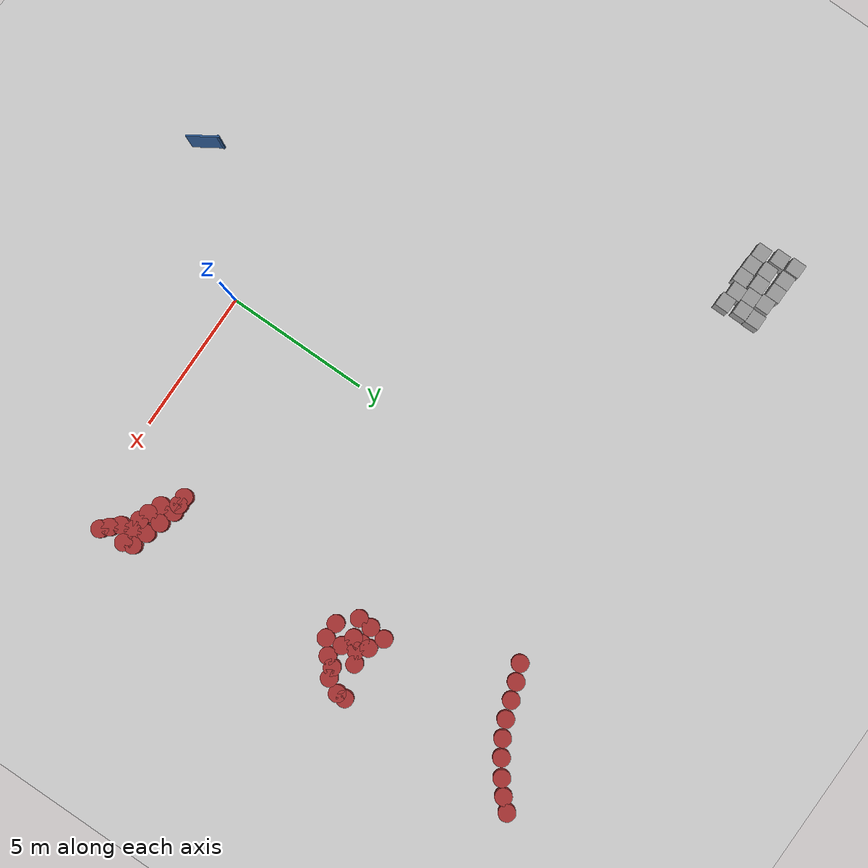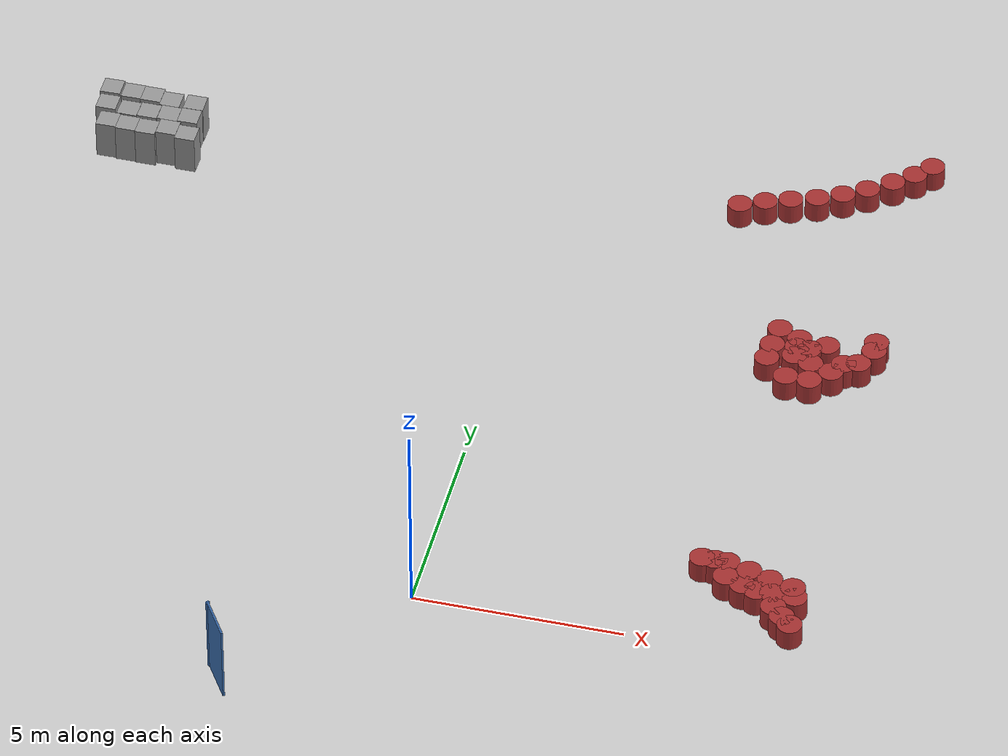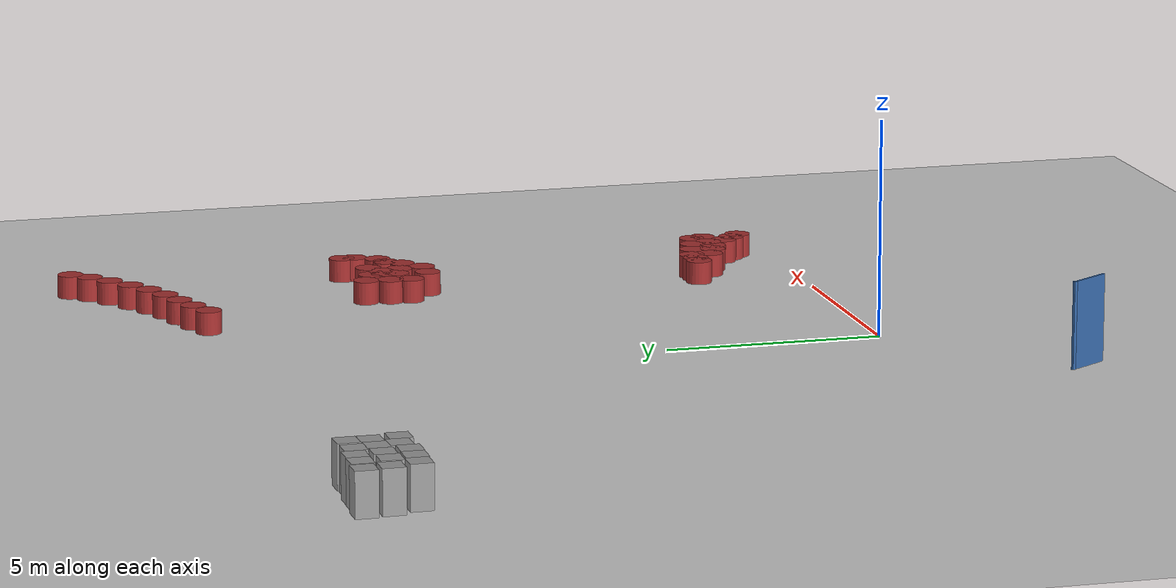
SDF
<sdf version="1.6">
 <world name="default">
  <model name="ground_plane">
   <static>1</static>
   <link name="link">
    <collision name="collision">
     <geometry><plane><normal>0 0 1</normal><size>100 100</size></plane></geometry>
     <surface><friction><ode><mu>100</mu><mu2>50</mu2></ode></friction></surface>
    </collision>
    <visual name="visual">
     <cast_shadows>0</cast_shadows>
     <geometry><plane><normal>0 0 1</normal><size>100 100</size></plane></geometry>
     <material>
      <script><uri>file://media/materials/scripts/gazebo.material</uri><name>Gazebo/Grey</name></script>
     </material>
    </visual>
   </link>
  </model>
  <model name="unit_cylinder_0">
   <static>1</static>
   <pose>8.49487 0.951336 0 0 -0 0</pose>
   <link name="link">
    <inertial>
     <mass>1</mass>
     <inertia><ixx>0.145833</ixx><ixy>0</ixy><ixz>0</ixz><iyy>0.145833</iyy><iyz>0</iyz><izz>0.125</izz></inertia>
    </inertial>
    <collision name="collision">
     <geometry><cylinder><radius>0.3</radius><length>1</length></cylinder></geometry>
    </collision>
    <visual name="visual">
     <geometry><cylinder><radius>0.3</radius><length>1</length></cylinder></geometry>
     <material><ambient>0.648 0.192 0.192 1</ambient><diffuse>0.648 0.192 0.192 1</diffuse></material>
     <material>
      <script><name>Gazebo/Grey</name><uri>file://media/materials/scripts/gazebo.material</uri></script>
     </material>
    </visual>
   </link>
  </model>
  <model name="unit_cylinder_8">
   <static>1</static>
   <pose>7.7404 1.62892 0 0 -0 0</pose>
   <link name="link">
    <inertial>
     <mass>1</mass>
     <inertia><ixx>0.145833</ixx><ixy>0</ixy><ixz>0</ixz><iyy>0.145833</iyy><iyz>0</iyz><izz>0.125</izz></inertia>
    </inertial>
    <collision name="collision">
     <geometry><cylinder><radius>0.3</radius><length>1</length></cylinder></geometry>
    </collision>
    <visual name="visual">
     <geometry><cylinder><radius>0.3</radius><length>1</length></cylinder></geometry>
     <material><ambient>0.648 0.192 0.192 1</ambient><diffuse>0.648 0.192 0.192 1</diffuse></material>
     <material>
      <script><name>Gazebo/Grey</name><uri>file://media/materials/scripts/gazebo.material</uri></script>
     </material>
    </visual>
   </link>
  </model>
  <model name="unit_cylinder_9">
   <static>1</static>
   <pose>8.23796 1.21672 0 0 -0 0</pose>
   <link name="link">
    <inertial>
     <mass>1</mass>
     <inertia><ixx>0.145833</ixx><ixy>0</ixy><ixz>0</ixz><iyy>0.145833</iyy><iyz>0</iyz><izz>0.125</izz></inertia>
    </inertial>
    <collision name="collision">
     <geometry><cylinder><radius>0.3</radius><length>1</length></cylinder></geometry>
    </collision>
    <visual name="visual">
     <geometry><cylinder><radius>0.3</radius><length>1</length></cylinder></geometry>
     <material><ambient>0.648 0.192 0.192 1</ambient><diffuse>0.648 0.192 0.192 1</diffuse></material>
     <material>
      <script><name>Gazebo/Grey</name><uri>file://media/materials/scripts/gazebo.material</uri></script>
     </material>
    </visual>
   </link>
  </model>
  <model name="unit_cylinder_10">
   <static>1</static>
   <pose>5.63003 15.006 0 0 -0 0</pose>
   <link name="link">
    <inertial>
     <mass>1</mass>
     <inertia><ixx>0.145833</ixx><ixy>0</ixy><ixz>0</ixz><iyy>0.145833</iyy><iyz>0</iyz><izz>0.125</izz></inertia>
    </inertial>
    <collision name="collision">
     <geometry><cylinder><radius>0.3</radius><length>1</length></cylinder></geometry>
    </collision>
    <visual name="visual">
     <geometry><cylinder><radius>0.3</radius><length>1</length></cylinder></geometry>
     <material><ambient>0.648 0.192 0.192 1</ambient><diffuse>0.648 0.192 0.192 1</diffuse></material>
     <material>
      <script><name>Gazebo/Grey</name><uri>file://media/materials/scripts/gazebo.material</uri></script>
     </material>
    </visual>
   </link>
  </model>
  <model name="unit_cylinder_31">
   <static>1</static>
   <pose>7.97845 2.06635 0 0 -0 0</pose>
   <link name="link">
    <inertial>
     <mass>1</mass>
     <inertia><ixx>0.145833</ixx><ixy>0</ixy><ixz>0</ixz><iyy>0.145833</iyy><iyz>0</iyz><izz>0.125</izz></inertia>
    </inertial>
    <collision name="collision">
     <geometry><cylinder><radius>0.3</radius><length>1</length></cylinder></geometry>
    </collision>
    <visual name="visual">
     <geometry><cylinder><radius>0.3</radius><length>1</length></cylinder></geometry>
     <material><ambient>0.648 0.192 0.192 1</ambient><diffuse>0.648 0.192 0.192 1</diffuse></material>
     <material>
      <script><name>Gazebo/Grey</name><uri>file://media/materials/scripts/gazebo.material</uri></script>
     </material>
    </visual>
   </link>
  </model>
  <model name="unit_cylinder_36">
   <static>1</static>
   <pose>8.54934 1.9215 0 0 -0 0</pose>
   <link name="link">
    <inertial>
     <mass>1</mass>
     <inertia><ixx>0.145833</ixx><ixy>0</ixy><ixz>0</ixz><iyy>0.145833</iyy><iyz>0</iyz><izz>0.125</izz></inertia>
    </inertial>
    <collision name="collision">
     <geometry><cylinder><radius>0.3</radius><length>1</length></cylinder></geometry>
    </collision>
    <visual name="visual">
     <geometry><cylinder><radius>0.3</radius><length>1</length></cylinder></geometry>
     <material><ambient>0.648 0.192 0.192 1</ambient><diffuse>0.648 0.192 0.192 1</diffuse></material>
     <material>
      <script><name>Gazebo/Grey</name><uri>file://media/materials/scripts/gazebo.material</uri></script>
     </material>
    </visual>
   </link>
  </model>
  <model name="unit_cylinder_50">
   <static>1</static>
   <pose>6.36842 10.4436 0 0 -0 0</pose>
   <link name="link">
    <inertial>
     <mass>1</mass>
     <inertia><ixx>0.145833</ixx><ixy>0</ixy><ixz>0</ixz><iyy>0.145833</iyy><iyz>0</iyz><izz>0.125</izz></inertia>
    </inertial>
    <collision name="collision">
     <geometry><cylinder><radius>0.3</radius><length>1</length></cylinder></geometry>
    </collision>
    <visual name="visual">
     <geometry><cylinder><radius>0.3</radius><length>1</length></cylinder></geometry>
     <material><ambient>0.648 0.192 0.192 1</ambient><diffuse>0.648 0.192 0.192 1</diffuse></material>
     <material>
      <script><name>Gazebo/Grey</name><uri>file://media/materials/scripts/gazebo.material</uri></script>
     </material>
    </visual>
   </link>
  </model>
  <model name="unit_cylinder_51">
   <static>1</static>
   <pose>6.27683 9.38692 0 0 -0 0</pose>
   <link name="link">
    <inertial>
     <mass>1</mass>
     <inertia><ixx>0.145833</ixx><ixy>0</ixy><ixz>0</ixz><iyy>0.145833</iyy><iyz>0</iyz><izz>0.125</izz></inertia>
    </inertial>
    <collision name="collision">
     <geometry><cylinder><radius>0.3</radius><length>1</length></cylinder></geometry>
    </collision>
    <visual name="visual">
     <geometry><cylinder><radius>0.3</radius><length>1</length></cylinder></geometry>
     <material><ambient>0.648 0.192 0.192 1</ambient><diffuse>0.648 0.192 0.192 1</diffuse></material>
     <material>
      <script><name>Gazebo/Grey</name><uri>file://media/materials/scripts/gazebo.material</uri></script>
     </material>
    </visual>
   </link>
  </model>
  <model name="unit_cylinder_54">
   <static>1</static>
   <pose>6.84905 8.85668 0 0 -0 0</pose>
   <link name="link">
    <inertial>
     <mass>1</mass>
     <inertia><ixx>0.145833</ixx><ixy>0</ixy><ixz>0</ixz><iyy>0.145833</iyy><iyz>0</iyz><izz>0.125</izz></inertia>
    </inertial>
    <collision name="collision">
     <geometry><cylinder><radius>0.3</radius><length>1</length></cylinder></geometry>
    </collision>
    <visual name="visual">
     <geometry><cylinder><radius>0.3</radius><length>1</length></cylinder></geometry>
     <material><ambient>0.648 0.192 0.192 1</ambient><diffuse>0.648 0.192 0.192 1</diffuse></material>
     <material>
      <script><name>Gazebo/Grey</name><uri>file://media/materials/scripts/gazebo.material</uri></script>
     </material>
    </visual>
   </link>
  </model>
  <model name="unit_cylinder_55">
   <static>1</static>
   <pose>6.304 9.86983 0 0 -0 0</pose>
   <link name="link">
    <inertial>
     <mass>1</mass>
     <inertia><ixx>0.145833</ixx><ixy>0</ixy><ixz>0</ixz><iyy>0.145833</iyy><iyz>0</iyz><izz>0.125</izz></inertia>
    </inertial>
    <collision name="collision">
     <geometry><cylinder><radius>0.3</radius><length>1</length></cylinder></geometry>
    </collision>
    <visual name="visual">
     <geometry><cylinder><radius>0.3</radius><length>1</length></cylinder></geometry>
     <material><ambient>0.648 0.192 0.192 1</ambient><diffuse>0.648 0.192 0.192 1</diffuse></material>
     <material>
      <script><name>Gazebo/Grey</name><uri>file://media/materials/scripts/gazebo.material</uri></script>
     </material>
    </visual>
   </link>
  </model>
  <model name="unit_cylinder_56">
   <static>1</static>
   <pose>7.41842 8.85559 0 0 -0 0</pose>
   <link name="link">
    <inertial>
     <mass>1</mass>
     <inertia><ixx>0.145833</ixx><ixy>0</ixy><ixz>0</ixz><iyy>0.145833</iyy><iyz>0</iyz><izz>0.125</izz></inertia>
    </inertial>
    <collision name="collision">
     <geometry><cylinder><radius>0.3</radius><length>1</length></cylinder></geometry>
    </collision>
    <visual name="visual">
     <geometry><cylinder><radius>0.3</radius><length>1</length></cylinder></geometry>
     <material><ambient>0.648 0.192 0.192 1</ambient><diffuse>0.648 0.192 0.192 1</diffuse></material>
     <material>
      <script><name>Gazebo/Grey</name><uri>file://media/materials/scripts/gazebo.material</uri></script>
     </material>
    </visual>
   </link>
  </model>
  <model name="unit_cylinder_57">
   <static>1</static>
   <pose>7.32882 9.42661 0 0 -0 0</pose>
   <link name="link">
    <inertial>
     <mass>1</mass>
     <inertia><ixx>0.145833</ixx><ixy>0</ixy><ixz>0</ixz><iyy>0.145833</iyy><iyz>0</iyz><izz>0.125</izz></inertia>
    </inertial>
    <collision name="collision">
     <geometry><cylinder><radius>0.3</radius><length>1</length></cylinder></geometry>
    </collision>
    <visual name="visual">
     <geometry><cylinder><radius>0.3</radius><length>1</length></cylinder></geometry>
     <material><ambient>0.648 0.192 0.192 1</ambient><diffuse>0.648 0.192 0.192 1</diffuse></material>
     <material>
      <script><name>Gazebo/Grey</name><uri>file://media/materials/scripts/gazebo.material</uri></script>
     </material>
    </visual>
   </link>
  </model>
  <model name="unit_cylinder_59">
   <static>1</static>
   <pose>5.04319 14.7989 0 0 -0 0</pose>
   <link name="link">
    <inertial>
     <mass>1</mass>
     <inertia><ixx>0.145833</ixx><ixy>0</ixy><ixz>0</ixz><iyy>0.145833</iyy><iyz>0</iyz><izz>0.125</izz></inertia>
    </inertial>
    <collision name="collision">
     <geometry><cylinder><radius>0.3</radius><length>1</length></cylinder></geometry>
    </collision>
    <visual name="visual">
     <geometry><cylinder><radius>0.3</radius><length>1</length></cylinder></geometry>
     <material><ambient>0.648 0.192 0.192 1</ambient><diffuse>0.648 0.192 0.192 1</diffuse></material>
     <material>
      <script><name>Gazebo/Grey</name><uri>file://media/materials/scripts/gazebo.material</uri></script>
     </material>
    </visual>
   </link>
  </model>
  <model name="unit_cylinder_60">
   <static>1</static>
   <pose>4.47051 14.5568 0 0 -0 0</pose>
   <link name="link">
    <inertial>
     <mass>1</mass>
     <inertia><ixx>0.145833</ixx><ixy>0</ixy><ixz>0</ixz><iyy>0.145833</iyy><iyz>0</iyz><izz>0.125</izz></inertia>
    </inertial>
    <collision name="collision">
     <geometry><cylinder><radius>0.3</radius><length>1</length></cylinder></geometry>
    </collision>
    <visual name="visual">
     <geometry><cylinder><radius>0.3</radius><length>1</length></cylinder></geometry>
     <material><ambient>0.648 0.192 0.192 1</ambient><diffuse>0.648 0.192 0.192 1</diffuse></material>
     <material>
      <script><name>Gazebo/Grey</name><uri>file://media/materials/scripts/gazebo.material</uri></script>
     </material>
    </visual>
   </link>
  </model>
  <model name="unit_cylinder_61">
   <static>1</static>
   <pose>6.3 2.4 0 0 -0 0</pose>
   <link name="link">
    <inertial>
     <mass>1</mass>
     <inertia><ixx>0.145833</ixx><ixy>0</ixy><ixz>0</ixz><iyy>0.145833</iyy><iyz>0</iyz><izz>0.125</izz></inertia>
    </inertial>
    <collision name="collision">
     <geometry><cylinder><radius>0.3</radius><length>1</length></cylinder></geometry>
    </collision>
    <visual name="visual">
     <geometry><cylinder><radius>0.3</radius><length>1</length></cylinder></geometry>
     <material><ambient>0.648 0.192 0.192 1</ambient><diffuse>0.648 0.192 0.192 1</diffuse></material>
     <material>
      <script><name>Gazebo/Grey</name><uri>file://media/materials/scripts/gazebo.material</uri></script>
     </material>
    </visual>
   </link>
  </model>
  <model name="unit_cylinder_62">
   <static>1</static>
   <pose>6.81366 15.4863 0 0 -0 0</pose>
   <link name="link">
    <inertial>
     <mass>1</mass>
     <inertia><ixx>0.145833</ixx><ixy>0</ixy><ixz>0</ixz><iyy>0.145833</iyy><iyz>0</iyz><izz>0.125</izz></inertia>
    </inertial>
    <collision name="collision">
     <geometry><cylinder><radius>0.3</radius><length>1</length></cylinder></geometry>
    </collision>
    <visual name="visual">
     <geometry><cylinder><radius>0.3</radius><length>1</length></cylinder></geometry>
     <material><ambient>0.648 0.192 0.192 1</ambient><diffuse>0.648 0.192 0.192 1</diffuse></material>
     <material>
      <script><name>Gazebo/Grey</name><uri>file://media/materials/scripts/gazebo.material</uri></script>
     </material>
    </visual>
   </link>
  </model>
  <model name="unit_cylinder_63">
   <static>1</static>
   <pose>6.24098 15.2147 0 0 -0 0</pose>
   <link name="link">
    <inertial>
     <mass>1</mass>
     <inertia><ixx>0.145833</ixx><ixy>0</ixy><ixz>0</ixz><iyy>0.145833</iyy><iyz>0</iyz><izz>0.125</izz></inertia>
    </inertial>
    <collision name="collision">
     <geometry><cylinder><radius>0.3</radius><length>1</length></cylinder></geometry>
    </collision>
    <visual name="visual">
     <geometry><cylinder><radius>0.3</radius><length>1</length></cylinder></geometry>
     <material><ambient>0.648 0.192 0.192 1</ambient><diffuse>0.648 0.192 0.192 1</diffuse></material>
     <material>
      <script><name>Gazebo/Grey</name><uri>file://media/materials/scripts/gazebo.material</uri></script>
     </material>
    </visual>
   </link>
  </model>
  <model name="unit_cylinder_64">
   <static>1</static>
   <pose>7.44911 2.23405 0 0 -0 0</pose>
   <link name="link">
    <inertial>
     <mass>1</mass>
     <inertia><ixx>0.145833</ixx><ixy>0</ixy><ixz>0</ixz><iyy>0.145833</iyy><iyz>0</iyz><izz>0.125</izz></inertia>
    </inertial>
    <collision name="collision">
     <geometry><cylinder><radius>0.3</radius><length>1</length></cylinder></geometry>
    </collision>
    <visual name="visual">
     <geometry><cylinder><radius>0.3</radius><length>1</length></cylinder></geometry>
     <material><ambient>0.648 0.192 0.192 1</ambient><diffuse>0.648 0.192 0.192 1</diffuse></material>
     <material>
      <script><name>Gazebo/Grey</name><uri>file://media/materials/scripts/gazebo.material</uri></script>
     </material>
    </visual>
   </link>
  </model>
  <model name="unit_cylinder_65">
   <static>1</static>
   <pose>6.6 2.4 0 0 -0 0</pose>
   <link name="link">
    <inertial>
     <mass>1</mass>
     <inertia><ixx>0.145833</ixx><ixy>0</ixy><ixz>0</ixz><iyy>0.145833</iyy><iyz>0</iyz><izz>0.125</izz></inertia>
    </inertial>
    <collision name="collision">
     <geometry><cylinder><radius>0.3</radius><length>1</length></cylinder></geometry>
    </collision>
    <visual name="visual">
     <geometry><cylinder><radius>0.3</radius><length>1</length></cylinder></geometry>
     <material><ambient>0.648 0.192 0.192 1</ambient><diffuse>0.648 0.192 0.192 1</diffuse></material>
     <material>
      <script><name>Gazebo/Grey</name><uri>file://media/materials/scripts/gazebo.material</uri></script>
     </material>
    </visual>
   </link>
  </model>
  <model name="unit_cylinder_66">
   <static>1</static>
   <pose>7.3541 15.8169 0 0 -0 0</pose>
   <link name="link">
    <inertial>
     <mass>1</mass>
     <inertia><ixx>0.145833</ixx><ixy>0</ixy><ixz>0</ixz><iyy>0.145833</iyy><iyz>0</iyz><izz>0.125</izz></inertia>
    </inertial>
    <collision name="collision">
     <geometry><cylinder><radius>0.3</radius><length>1</length></cylinder></geometry>
    </collision>
    <visual name="visual">
     <geometry><cylinder><radius>0.3</radius><length>1</length></cylinder></geometry>
     <material><ambient>0.648 0.192 0.192 1</ambient><diffuse>0.648 0.192 0.192 1</diffuse></material>
     <material>
      <script><name>Gazebo/Grey</name><uri>file://media/materials/scripts/gazebo.material</uri></script>
     </material>
    </visual>
   </link>
  </model>
  <model name="unit_cylinder_67">
   <static>1</static>
   <pose>7.89653 16.2066 0 0 -0 0</pose>
   <link name="link">
    <inertial>
     <mass>1</mass>
     <inertia><ixx>0.145833</ixx><ixy>0</ixy><ixz>0</ixz><iyy>0.145833</iyy><iyz>0</iyz><izz>0.125</izz></inertia>
    </inertial>
    <collision name="collision">
     <geometry><cylinder><radius>0.3</radius><length>1</length></cylinder></geometry>
    </collision>
    <visual name="visual">
     <geometry><cylinder><radius>0.3</radius><length>1</length></cylinder></geometry>
     <material><ambient>0.648 0.192 0.192 1</ambient><diffuse>0.648 0.192 0.192 1</diffuse></material>
     <material>
      <script><name>Gazebo/Grey</name><uri>file://media/materials/scripts/gazebo.material</uri></script>
     </material>
    </visual>
   </link>
  </model>
  <model name="unit_cylinder_68">
   <static>1</static>
   <pose>6.9 2.4 0 0 -0 0</pose>
   <link name="link">
    <inertial>
     <mass>1</mass>
     <inertia><ixx>0.145833</ixx><ixy>0</ixy><ixz>0</ixz><iyy>0.145833</iyy><iyz>0</iyz><izz>0.125</izz></inertia>
    </inertial>
    <collision name="collision">
     <geometry><cylinder><radius>0.3</radius><length>1</length></cylinder></geometry>
    </collision>
    <visual name="visual">
     <geometry><cylinder><radius>0.3</radius><length>1</length></cylinder></geometry>
     <material><ambient>0.648 0.192 0.192 1</ambient><diffuse>0.648 0.192 0.192 1</diffuse></material>
     <material>
      <script><name>Gazebo/Grey</name><uri>file://media/materials/scripts/gazebo.material</uri></script>
     </material>
    </visual>
   </link>
  </model>
  <model name="unit_cylinder_69">
   <static>1</static>
   <pose>6.9 9.6 0 0 -0 0</pose>
   <link name="link">
    <inertial>
     <mass>1</mass>
     <inertia><ixx>0.145833</ixx><ixy>0</ixy><ixz>0</ixz><iyy>0.145833</iyy><iyz>0</iyz><izz>0.125</izz></inertia>
    </inertial>
    <collision name="collision">
     <geometry><cylinder><radius>0.3</radius><length>1</length></cylinder></geometry>
    </collision>
    <visual name="visual">
     <geometry><cylinder><radius>0.3</radius><length>1</length></cylinder></geometry>
     <material><ambient>0.648 0.192 0.192 1</ambient><diffuse>0.648 0.192 0.192 1</diffuse></material>
     <material>
      <script><name>Gazebo/Grey</name><uri>file://media/materials/scripts/gazebo.material</uri></script>
     </material>
    </visual>
   </link>
  </model>
  <model name="unit_cylinder_70">
   <static>1</static>
   <pose>6.9 9.9 0 0 -0 0</pose>
   <link name="link">
    <inertial>
     <mass>1</mass>
     <inertia><ixx>0.145833</ixx><ixy>0</ixy><ixz>0</ixz><iyy>0.145833</iyy><iyz>0</iyz><izz>0.125</izz></inertia>
    </inertial>
    <collision name="collision">
     <geometry><cylinder><radius>0.3</radius><length>1</length></cylinder></geometry>
    </collision>
    <visual name="visual">
     <geometry><cylinder><radius>0.3</radius><length>1</length></cylinder></geometry>
     <material><ambient>0.648 0.192 0.192 1</ambient><diffuse>0.648 0.192 0.192 1</diffuse></material>
     <material>
      <script><name>Gazebo/Grey</name><uri>file://media/materials/scripts/gazebo.material</uri></script>
     </material>
    </visual>
   </link>
  </model>
  <model name="unit_cylinder_71">
   <static>1</static>
   <pose>6.9 10.2 0 0 -0 0</pose>
   <link name="link">
    <inertial>
     <mass>1</mass>
     <inertia><ixx>0.145833</ixx><ixy>0</ixy><ixz>0</ixz><iyy>0.145833</iyy><iyz>0</iyz><izz>0.125</izz></inertia>
    </inertial>
    <collision name="collision">
     <geometry><cylinder><radius>0.3</radius><length>1</length></cylinder></geometry>
    </collision>
    <visual name="visual">
     <geometry><cylinder><radius>0.3</radius><length>1</length></cylinder></geometry>
     <material><ambient>0.648 0.192 0.192 1</ambient><diffuse>0.648 0.192 0.192 1</diffuse></material>
     <material>
      <script><name>Gazebo/Grey</name><uri>file://media/materials/scripts/gazebo.material</uri></script>
     </material>
    </visual>
   </link>
  </model>
  <model name="unit_cylinder_72">
   <static>1</static>
   <pose>7.2 9.9 0 0 -0 0</pose>
   <link name="link">
    <inertial>
     <mass>1</mass>
     <inertia><ixx>0.145833</ixx><ixy>0</ixy><ixz>0</ixz><iyy>0.145833</iyy><iyz>0</iyz><izz>0.125</izz></inertia>
    </inertial>
    <collision name="collision">
     <geometry><cylinder><radius>0.3</radius><length>1</length></cylinder></geometry>
    </collision>
    <visual name="visual">
     <geometry><cylinder><radius>0.3</radius><length>1</length></cylinder></geometry>
     <material><ambient>0.648 0.192 0.192 1</ambient><diffuse>0.648 0.192 0.192 1</diffuse></material>
     <material>
      <script><name>Gazebo/Grey</name><uri>file://media/materials/scripts/gazebo.material</uri></script>
     </material>
    </visual>
   </link>
  </model>
  <model name="unit_cylinder_80">
   <static>1</static>
   <pose>7.8596 9.24358 0 0 -0 0</pose>
   <link name="link">
    <inertial>
     <mass>1</mass>
     <inertia><ixx>0.145833</ixx><ixy>0</ixy><ixz>0</ixz><iyy>0.145833</iyy><iyz>0</iyz><izz>0.125</izz></inertia>
    </inertial>
    <collision name="collision">
     <geometry><cylinder><radius>0.3</radius><length>1</length></cylinder></geometry>
    </collision>
    <visual name="visual">
     <geometry><cylinder><radius>0.3</radius><length>1</length></cylinder></geometry>
     <material><ambient>0.648 0.192 0.192 1</ambient><diffuse>0.648 0.192 0.192 1</diffuse></material>
     <material>
      <script><name>Gazebo/Grey</name><uri>file://media/materials/scripts/gazebo.material</uri></script>
     </material>
    </visual>
   </link>
  </model>
  <model name="unit_cylinder_82">
   <static>1</static>
   <pose>8.43246 9.69504 0 0 -0 0</pose>
   <link name="link">
    <inertial>
     <mass>1</mass>
     <inertia><ixx>0.145833</ixx><ixy>0</ixy><ixz>0</ixz><iyy>0.145833</iyy><iyz>0</iyz><izz>0.125</izz></inertia>
    </inertial>
    <collision name="collision">
     <geometry><cylinder><radius>0.3</radius><length>1</length></cylinder></geometry>
    </collision>
    <visual name="visual">
     <geometry><cylinder><radius>0.3</radius><length>1</length></cylinder></geometry>
     <material><ambient>0.648 0.192 0.192 1</ambient><diffuse>0.648 0.192 0.192 1</diffuse></material>
     <material>
      <script><name>Gazebo/Grey</name><uri>file://media/materials/scripts/gazebo.material</uri></script>
     </material>
    </visual>
   </link>
  </model>
  <model name="unit_cylinder_83">
   <static>1</static>
   <pose>8.09771 9.57615 0 0 -0 0</pose>
   <link name="link">
    <inertial>
     <mass>1</mass>
     <inertia><ixx>0.145833</ixx><ixy>0</ixy><ixz>0</ixz><iyy>0.145833</iyy><iyz>0</iyz><izz>0.125</izz></inertia>
    </inertial>
    <collision name="collision">
     <geometry><cylinder><radius>0.3</radius><length>1</length></cylinder></geometry>
    </collision>
    <visual name="visual">
     <geometry><cylinder><radius>0.3</radius><length>1</length></cylinder></geometry>
     <material><ambient>0.648 0.192 0.192 1</ambient><diffuse>0.648 0.192 0.192 1</diffuse></material>
     <material>
      <script><name>Gazebo/Grey</name><uri>file://media/materials/scripts/gazebo.material</uri></script>
     </material>
    </visual>
   </link>
  </model>
  <model name="unit_cylinder_88">
   <static>1</static>
   <pose>7.58689 10.1187 0 0 -0 0</pose>
   <link name="link">
    <inertial>
     <mass>1</mass>
     <inertia><ixx>0.145833</ixx><ixy>0</ixy><ixz>0</ixz><iyy>0.145833</iyy><iyz>0</iyz><izz>0.125</izz></inertia>
    </inertial>
    <collision name="collision">
     <geometry><cylinder><radius>0.3</radius><length>1</length></cylinder></geometry>
    </collision>
    <visual name="visual">
     <geometry><cylinder><radius>0.3</radius><length>1</length></cylinder></geometry>
     <material><ambient>0.648 0.192 0.192 1</ambient><diffuse>0.648 0.192 0.192 1</diffuse></material>
     <material>
      <script><name>Gazebo/Grey</name><uri>file://media/materials/scripts/gazebo.material</uri></script>
     </material>
    </visual>
   </link>
  </model>
  <model name="unit_cylinder_89">
   <static>1</static>
   <pose>8.7 10.2 0 0 -0 0</pose>
   <link name="link">
    <inertial>
     <mass>1</mass>
     <inertia><ixx>0.145833</ixx><ixy>0</ixy><ixz>0</ixz><iyy>0.145833</iyy><iyz>0</iyz><izz>0.125</izz></inertia>
    </inertial>
    <collision name="collision">
     <geometry><cylinder><radius>0.3</radius><length>1</length></cylinder></geometry>
    </collision>
    <visual name="visual">
     <geometry><cylinder><radius>0.3</radius><length>1</length></cylinder></geometry>
     <material><ambient>0.648 0.192 0.192 1</ambient><diffuse>0.648 0.192 0.192 1</diffuse></material>
     <material>
      <script><name>Gazebo/Grey</name><uri>file://media/materials/scripts/gazebo.material</uri></script>
     </material>
    </visual>
   </link>
  </model>
  <model name="unit_cylinder_90">
   <static>1</static>
   <pose>8.7 10.5 0 0 -0 0</pose>
   <link name="link">
    <inertial>
     <mass>1</mass>
     <inertia><ixx>0.145833</ixx><ixy>0</ixy><ixz>0</ixz><iyy>0.145833</iyy><iyz>0</iyz><izz>0.125</izz></inertia>
    </inertial>
    <collision name="collision">
     <geometry><cylinder><radius>0.3</radius><length>1</length></cylinder></geometry>
    </collision>
    <visual name="visual">
     <geometry><cylinder><radius>0.3</radius><length>1</length></cylinder></geometry>
     <material><ambient>0.648 0.192 0.192 1</ambient><diffuse>0.648 0.192 0.192 1</diffuse></material>
     <material>
      <script><name>Gazebo/Grey</name><uri>file://media/materials/scripts/gazebo.material</uri></script>
     </material>
    </visual>
   </link>
  </model>
  <model name="unit_cylinder_116">
   <static>1</static>
   <pose>8.72273 16.9848 0 0 -0 0</pose>
   <link name="link">
    <inertial>
     <mass>1</mass>
     <inertia><ixx>0.145833</ixx><ixy>0</ixy><ixz>0</ixz><iyy>0.145833</iyy><iyz>0</iyz><izz>0.125</izz></inertia>
    </inertial>
    <collision name="collision">
     <geometry><cylinder><radius>0.3</radius><length>1</length></cylinder></geometry>
    </collision>
    <visual name="visual">
     <geometry><cylinder><radius>0.3</radius><length>1</length></cylinder></geometry>
     <material><ambient>0.648 0.192 0.192 1</ambient><diffuse>0.648 0.192 0.192 1</diffuse></material>
     <material>
      <script><name>Gazebo/Grey</name><uri>file://media/materials/scripts/gazebo.material</uri></script>
     </material>
    </visual>
   </link>
  </model>
  <model name="unit_cylinder_117">
   <static>1</static>
   <pose>8.35858 16.594 0 0 -0 0</pose>
   <link name="link">
    <inertial>
     <mass>1</mass>
     <inertia><ixx>0.145833</ixx><ixy>0</ixy><ixz>0</ixz><iyy>0.145833</iyy><iyz>0</iyz><izz>0.125</izz></inertia>
    </inertial>
    <collision name="collision">
     <geometry><cylinder><radius>0.3</radius><length>1</length></cylinder></geometry>
    </collision>
    <visual name="visual">
     <geometry><cylinder><radius>0.3</radius><length>1</length></cylinder></geometry>
     <material><ambient>0.648 0.192 0.192 1</ambient><diffuse>0.648 0.192 0.192 1</diffuse></material>
     <material>
      <script><name>Gazebo/Grey</name><uri>file://media/materials/scripts/gazebo.material</uri></script>
     </material>
    </visual>
   </link>
  </model>
  <model name="unit_cylinder_345">
   <static>1</static>
   <pose>7.39574 1.74191 0 0 -0 0</pose>
   <link name="link">
    <inertial>
     <mass>1</mass>
     <inertia><ixx>0.145833</ixx><ixy>0</ixy><ixz>0</ixz><iyy>0.145833</iyy><iyz>0</iyz><izz>0.125</izz></inertia>
    </inertial>
    <collision name="collision">
     <geometry><cylinder><radius>0.3</radius><length>1</length></cylinder></geometry>
    </collision>
    <visual name="visual">
     <geometry><cylinder><radius>0.3</radius><length>1</length></cylinder></geometry>
     <material><ambient>0.648 0.192 0.192 1</ambient><diffuse>0.648 0.192 0.192 1</diffuse></material>
     <material>
      <script><name>Gazebo/Grey</name><uri>file://media/materials/scripts/gazebo.material</uri></script>
     </material>
    </visual>
   </link>
  </model>
  <model name="unit_cylinder_346">
   <static>1</static>
   <pose>8.65275 1.62159 0 0 -0 0</pose>
   <link name="link">
    <inertial>
     <mass>1</mass>
     <inertia><ixx>0.145833</ixx><ixy>0</ixy><ixz>0</ixz><iyy>0.145833</iyy><iyz>0</iyz><izz>0.125</izz></inertia>
    </inertial>
    <collision name="collision">
     <geometry><cylinder><radius>0.3</radius><length>1</length></cylinder></geometry>
    </collision>
    <visual name="visual">
     <geometry><cylinder><radius>0.3</radius><length>1</length></cylinder></geometry>
     <material><ambient>0.648 0.192 0.192 1</ambient><diffuse>0.648 0.192 0.192 1</diffuse></material>
     <material>
      <script><name>Gazebo/Grey</name><uri>file://media/materials/scripts/gazebo.material</uri></script>
     </material>
    </visual>
   </link>
  </model>
  <model name="unit_cylinder_352">
   <static>1</static>
   <pose>6.95838 1.92803 0 0 -0 0</pose>
   <link name="link">
    <inertial>
     <mass>1</mass>
     <inertia><ixx>0.145833</ixx><ixy>0</ixy><ixz>0</ixz><iyy>0.145833</iyy><iyz>0</iyz><izz>0.125</izz></inertia>
    </inertial>
    <collision name="collision">
     <geometry><cylinder><radius>0.3</radius><length>1</length></cylinder></geometry>
    </collision>
    <visual name="visual">
     <geometry><cylinder><radius>0.3</radius><length>1</length></cylinder></geometry>
     <material><ambient>0.648 0.192 0.192 1</ambient><diffuse>0.648 0.192 0.192 1</diffuse></material>
     <material>
      <script><name>Gazebo/Grey</name><uri>file://media/materials/scripts/gazebo.material</uri></script>
     </material>
    </visual>
   </link>
  </model>
  <model name="unit_cylinder_353">
   <static>1</static>
   <pose>8.72731 0.727768 0 0 -0 0</pose>
   <link name="link">
    <inertial>
     <mass>1</mass>
     <inertia><ixx>0.145833</ixx><ixy>0</ixy><ixz>0</ixz><iyy>0.145833</iyy><iyz>0</iyz><izz>0.125</izz></inertia>
    </inertial>
    <collision name="collision">
     <geometry><cylinder><radius>0.3</radius><length>1</length></cylinder></geometry>
    </collision>
    <visual name="visual">
     <geometry><cylinder><radius>0.3</radius><length>1</length></cylinder></geometry>
     <material><ambient>0.648 0.192 0.192 1</ambient><diffuse>0.648 0.192 0.192 1</diffuse></material>
     <material>
      <script><name>Gazebo/Grey</name><uri>file://media/materials/scripts/gazebo.material</uri></script>
     </material>
    </visual>
   </link>
  </model>
  <model name="unit_cylinder_358">
   <static>1</static>
   <pose>8.12041 1.63309 0 0 -0 0</pose>
   <link name="link">
    <inertial>
     <mass>1</mass>
     <inertia><ixx>0.145833</ixx><ixy>0</ixy><ixz>0</ixz><iyy>0.145833</iyy><iyz>0</iyz><izz>0.125</izz></inertia>
    </inertial>
    <collision name="collision">
     <geometry><cylinder><radius>0.3</radius><length>1</length></cylinder></geometry>
    </collision>
    <visual name="visual">
     <geometry><cylinder><radius>0.3</radius><length>1</length></cylinder></geometry>
     <material><ambient>0.648 0.192 0.192 1</ambient><diffuse>0.648 0.192 0.192 1</diffuse></material>
     <material>
      <script><name>Gazebo/Grey</name><uri>file://media/materials/scripts/gazebo.material</uri></script>
     </material>
    </visual>
   </link>
  </model>
  <model name="hinge_door">
   <link name="link_0">
    <inertial>
     <mass>0.11</mass>
     <inertia>
      <ixx>0.0366896</ixx>
      <ixy>0</ixy>
      <ixz>0</ixz>
      <iyy>0.0477583</iyy>
      <iyz>0</iyz>
      <izz>0.0111146</izz>
     </inertia>
    </inertial>
    <pose>0.25 0 1 0 -0 0</pose>
    <visual name="visual">
     <geometry><box><size>1.1 0.05 2</size></box></geometry>
     <material>
      <lighting>1</lighting>
      <script><uri>file://media/materials/scripts/gazebo.material</uri><name>Gazebo/Grey</name></script>
      <shader type="pixel"><normal_map>__default__</normal_map></shader>
      <ambient>0.204 0.396 0.643 1</ambient>
      <diffuse>0.7 0.7 0.7 1</diffuse>
      <specular>0.01 0.01 0.01 1</specular>
      <emissive>0 0 0 1</emissive>
     </material>
    </visual>
    <collision name="collision">
     <geometry><box><size>1.1 0.05 2</size></box></geometry>
     <surface>
      <friction>
       <ode><mu>1</mu><mu2>1</mu2><fdir1>0 0 0</fdir1><slip1>0</slip1><slip2>0</slip2></ode>
       <torsional>
        <coefficient>1</coefficient>
        <patch_radius>0</patch_radius>
        <surface_radius>0</surface_radius>
        <use_patch_radius>1</use_patch_radius>
        <ode><slip>0</slip></ode>
       </torsional>
      </friction>
      <bounce><restitution_coefficient>0</restitution_coefficient><threshold>1e+06</threshold></bounce>
      <contact>
       <collide_without_contact>0</collide_without_contact>
       <collide_without_contact_bitmask>1</collide_without_contact_bitmask>
       <collide_bitmask>1</collide_bitmask>
       <ode>
        <soft_cfm>0</soft_cfm>
        <soft_erp>0.2</soft_erp>
        <kp>1e+13</kp>
        <kd>1</kd>
        <max_vel>0.01</max_vel>
        <min_depth>0</min_depth>
       </ode>
       <bullet>
        <split_impulse>1</split_impulse>
        <split_impulse_penetration_threshold>-0.01</split_impulse_penetration_threshold>
        <soft_cfm>0</soft_cfm>
        <soft_erp>0.2</soft_erp>
        <kp>1e+13</kp>
        <kd>1</kd>
       </bullet>
      </contact>
     </surface>
    </collision>
   </link>
   <link name="link_1">
    <inertial>
     <mass>10.9956</mass>
     <inertia>
      <ixx>3.67206</ixx>
      <ixy>0</ixy>
      <ixz>0</ixz>
      <iyy>3.67206</iyy>
      <iyz>0</iyz>
      <izz>0.0137445</izz>
     </inertia>
    </inertial>
    <pose>-0.25 0 1 0 -0 0</pose>
    <visual name="visual">
     <geometry><cylinder><radius>0.05</radius><length>2</length></cylinder></geometry>
     <material>
      <lighting>1</lighting>
      <script><uri>file://media/materials/scripts/gazebo.material</uri><name>Gazebo/Grey</name></script>
      <shader type="pixel"><normal_map>__default__</normal_map></shader>
      <ambient>0.204 0.396 0.643 1</ambient>
      <diffuse>0.7 0.7 0.7 1</diffuse>
      <specular>0.01 0.01 0.01 1</specular>
      <emissive>0 0 0 1</emissive>
     </material>
    </visual>
    <collision name="collision">
     <geometry><cylinder><radius>0.05</radius><length>2</length></cylinder></geometry>
     <surface>
      <friction>
       <ode><mu>1</mu><mu2>1</mu2><fdir1>0 0 0</fdir1><slip1>0</slip1><slip2>0</slip2></ode>
       <torsional>
        <coefficient>1</coefficient>
        <patch_radius>0</patch_radius>
        <surface_radius>0</surface_radius>
        <use_patch_radius>1</use_patch_radius>
        <ode><slip>0</slip></ode>
       </torsional>
      </friction>
      <bounce><restitution_coefficient>0</restitution_coefficient><threshold>1e+06</threshold></bounce>
      <contact>
       <collide_without_contact>0</collide_without_contact>
       <collide_without_contact_bitmask>1</collide_without_contact_bitmask>
       <collide_bitmask>1</collide_bitmask>
       <ode>
        <soft_cfm>0</soft_cfm>
        <soft_erp>0.2</soft_erp>
        <kp>1e+13</kp>
        <kd>1</kd>
        <max_vel>0.01</max_vel>
        <min_depth>0</min_depth>
       </ode>
       <bullet>
        <split_impulse>1</split_impulse>
        <split_impulse_penetration_threshold>-0.01</split_impulse_penetration_threshold>
        <soft_cfm>0</soft_cfm>
        <soft_erp>0.2</soft_erp>
        <kp>1e+13</kp>
        <kd>1</kd>
       </bullet>
      </contact>
     </surface>
    </collision>
   </link>
   <joint name="hinge" type="revolute">
    <parent>link_1</parent>
    <child>link_0</child>
    <pose>-0.5 0 0 0 -0 0</pose>
    <axis>
     <xyz>0 0 1</xyz>
     <use_parent_model_frame>0</use_parent_model_frame>
     <limit>
      <lower>-1.79769e+308</lower>
      <upper>1.79769e+308</upper>
      <effort>-1</effort>
      <velocity>-1</velocity>
     </limit>
     <dynamics>
      <spring_reference>0</spring_reference>
      <spring_stiffness>0</spring_stiffness>
      <damping>0</damping>
      <friction>0</friction>
     </dynamics>
    </axis>
    <physics>
     <ode><limit><cfm>0</cfm><erp>0.2</erp></limit><suspension><cfm>0</cfm><erp>0.2</erp></suspension></ode>
    </physics>
   </joint>
   <joint name="floor_link" type="fixed">
    <child>link_1</child>
    <parent>world</parent>
    <axis>
     <xyz>0 0 1</xyz>
     <dynamics><spring_reference>0</spring_reference><spring_stiffness>0</spring_stiffness></dynamics>
     <use_parent_model_frame>0</use_parent_model_frame>
     <limit><lower>-1e+16</lower><upper>1e+16</upper></limit>
    </axis>
   </joint>
   <pose>-3.80058 -3.42718 0 0 0 -0.999995</pose>
  </model>
  <model name="unit_box_clone">
   <pose>-10.7293 14.5112 0.5 0 -0 0.000942</pose>
   <link name="link">
    <inertial>
     <mass>1</mass>
     <inertia>
      <ixx>0.166667</ixx>
      <ixy>0</ixy>
      <ixz>0</ixz>
      <iyy>0.166667</iyy>
      <iyz>0</iyz>
      <izz>0.166667</izz>
     </inertia>
    </inertial>
    <collision name="collision"><geometry><box><size>0.5 0.5 1</size></box></geometry></collision>
    <visual name="visual">
     <geometry><box><size>0.5 0.5 1</size></box></geometry>
     <material>
      <script><name>Gazebo/Grey</name><uri>file://media/materials/scripts/gazebo.material</uri></script>
     </material>
    </visual>
   </link>
  </model>
  <model name="unit_box_clone_0">
   <pose>-11.2666 14.562 0.5 0 0 -0.000148</pose>
   <link name="link">
    <inertial>
     <mass>1</mass>
     <inertia>
      <ixx>0.166667</ixx>
      <ixy>0</ixy>
      <ixz>0</ixz>
      <iyy>0.166667</iyy>
      <iyz>0</iyz>
      <izz>0.166667</izz>
     </inertia>
    </inertial>
    <collision name="collision"><geometry><box><size>0.5 0.5 1</size></box></geometry></collision>
    <visual name="visual">
     <geometry><box><size>0.5 0.5 1</size></box></geometry>
     <material>
      <script><name>Gazebo/Grey</name><uri>file://media/materials/scripts/gazebo.material</uri></script>
     </material>
    </visual>
   </link>
  </model>
  <model name="unit_box_clone_1">
   <pose>-10.1494 13.8993 0.5 0 0 -0.016939</pose>
   <link name="link">
    <inertial>
     <mass>1</mass>
     <inertia>
      <ixx>0.166667</ixx>
      <ixy>0</ixy>
      <ixz>0</ixz>
      <iyy>0.166667</iyy>
      <iyz>0</iyz>
      <izz>0.166667</izz>
     </inertia>
    </inertial>
    <collision name="collision"><geometry><box><size>0.5 0.5 1</size></box></geometry></collision>
    <visual name="visual">
     <geometry><box><size>0.5 0.5 1</size></box></geometry>
     <material>
      <script><name>Gazebo/Grey</name><uri>file://media/materials/scripts/gazebo.material</uri></script>
     </material>
    </visual>
   </link>
  </model>
  <model name="unit_box_clone_2">
   <pose>-10.6506 13.8773 0.5 0 0 -0.019305</pose>
   <link name="link">
    <inertial>
     <mass>1</mass>
     <inertia>
      <ixx>0.166667</ixx>
      <ixy>0</ixy>
      <ixz>0</ixz>
      <iyy>0.166667</iyy>
      <iyz>0</iyz>
      <izz>0.166667</izz>
     </inertia>
    </inertial>
    <collision name="collision"><geometry><box><size>0.5 0.5 1</size></box></geometry></collision>
    <visual name="visual">
     <geometry><box><size>0.5 0.5 1</size></box></geometry>
     <material>
      <script><name>Gazebo/Grey</name><uri>file://media/materials/scripts/gazebo.material</uri></script>
     </material>
    </visual>
   </link>
  </model>
  <model name="unit_box_clone_3">
   <pose>-11.2169 13.9833 0.5 0 0 -0.000127</pose>
   <link name="link">
    <inertial>
     <mass>1</mass>
     <inertia>
      <ixx>0.166667</ixx>
      <ixy>0</ixy>
      <ixz>0</ixz>
      <iyy>0.166667</iyy>
      <iyz>0</iyz>
      <izz>0.166667</izz>
     </inertia>
    </inertial>
    <collision name="collision"><geometry><box><size>0.5 0.5 1</size></box></geometry></collision>
    <visual name="visual">
     <geometry><box><size>0.5 0.5 1</size></box></geometry>
     <material>
      <script><name>Gazebo/Grey</name><uri>file://media/materials/scripts/gazebo.material</uri></script>
     </material>
    </visual>
   </link>
  </model>
  <model name="unit_box_clone_4">
   <pose>-10.0419 13.3198 0.5 0 0 -0.002473</pose>
   <link name="link">
    <inertial>
     <mass>1</mass>
     <inertia>
      <ixx>0.166667</ixx>
      <ixy>0</ixy>
      <ixz>0</ixz>
      <iyy>0.166667</iyy>
      <iyz>0</iyz>
      <izz>0.166667</izz>
     </inertia>
    </inertial>
    <collision name="collision"><geometry><box><size>0.5 0.5 1</size></box></geometry></collision>
    <visual name="visual">
     <geometry><box><size>0.5 0.5 1</size></box></geometry>
     <material>
      <script><name>Gazebo/Grey</name><uri>file://media/materials/scripts/gazebo.material</uri></script>
     </material>
    </visual>
   </link>
  </model>
  <model name="unit_box_clone_5">
   <pose>-10.5419 13.3368 0.5 0 0 -0.00245</pose>
   <link name="link">
    <inertial>
     <mass>1</mass>
     <inertia>
      <ixx>0.166667</ixx>
      <ixy>0</ixy>
      <ixz>0</ixz>
      <iyy>0.166667</iyy>
      <iyz>0</iyz>
      <izz>0.166667</izz>
     </inertia>
    </inertial>
    <collision name="collision"><geometry><box><size>0.5 0.5 1</size></box></geometry></collision>
    <visual name="visual">
     <geometry><box><size>0.5 0.5 1</size></box></geometry>
     <material>
      <script><name>Gazebo/Grey</name><uri>file://media/materials/scripts/gazebo.material</uri></script>
     </material>
    </visual>
   </link>
  </model>
  <model name="unit_box_clone_6">
   <pose>-11.0422 13.3682 0.499998 -5e-06 5e-06 -0.001123</pose>
   <link name="link">
    <inertial>
     <mass>1</mass>
     <inertia>
      <ixx>0.166667</ixx>
      <ixy>0</ixy>
      <ixz>0</ixz>
      <iyy>0.166667</iyy>
      <iyz>0</iyz>
      <izz>0.166667</izz>
     </inertia>
    </inertial>
    <collision name="collision"><geometry><box><size>0.5 0.5 1</size></box></geometry></collision>
    <visual name="visual">
     <geometry><box><size>0.5 0.5 1</size></box></geometry>
     <material>
      <script><name>Gazebo/Grey</name><uri>file://media/materials/scripts/gazebo.material</uri></script>
     </material>
    </visual>
   </link>
  </model>
  <model name="unit_box_clone_7">
   <pose>-9.54063 13.4184 0.5 -0 -0 -0.004016</pose>
   <link name="link">
    <inertial>
     <mass>1</mass>
     <inertia>
      <ixx>0.166667</ixx>
      <ixy>0</ixy>
      <ixz>0</ixz>
      <iyy>0.166667</iyy>
      <iyz>0</iyz>
      <izz>0.166667</izz>
     </inertia>
    </inertial>
    <collision name="collision"><geometry><box><size>0.5 0.5 1</size></box></geometry></collision>
    <visual name="visual">
     <geometry><box><size>0.5 0.5 1</size></box></geometry>
     <material>
      <script><name>Gazebo/Grey</name><uri>file://media/materials/scripts/gazebo.material</uri></script>
     </material>
    </visual>
   </link>
  </model>
  <model name="unit_box_clone_8">
   <pose>-9.64548 13.9192 0.5 0 -0 -0.003221</pose>
   <link name="link">
    <inertial>
     <mass>1</mass>
     <inertia>
      <ixx>0.166667</ixx>
      <ixy>0</ixy>
      <ixz>0</ixz>
      <iyy>0.166667</iyy>
      <iyz>0</iyz>
      <izz>0.166667</izz>
     </inertia>
    </inertial>
    <collision name="collision"><geometry><box><size>0.5 0.5 1</size></box></geometry></collision>
    <visual name="visual">
     <geometry><box><size>0.5 0.5 1</size></box></geometry>
     <material>
      <script><name>Gazebo/Grey</name><uri>file://media/materials/scripts/gazebo.material</uri></script>
     </material>
    </visual>
   </link>
  </model>
  <model name="unit_box_clone_9">
   <pose>-9.72685 14.4207 0.5 0 -0 0.002068</pose>
   <link name="link">
    <inertial>
     <mass>1</mass>
     <inertia>
      <ixx>0.166667</ixx>
      <ixy>0</ixy>
      <ixz>0</ixz>
      <iyy>0.166667</iyy>
      <iyz>0</iyz>
      <izz>0.166667</izz>
     </inertia>
    </inertial>
    <collision name="collision"><geometry><box><size>0.5 0.5 1</size></box></geometry></collision>
    <visual name="visual">
     <geometry><box><size>0.5 0.5 1</size></box></geometry>
     <material>
      <script><name>Gazebo/Grey</name><uri>file://media/materials/scripts/gazebo.material</uri></script>
     </material>
    </visual>
   </link>
  </model>
  <model name="unit_box_clone_10">
   <pose>-9.13324 14.4425 0.5 0 -0 0.006224</pose>
   <link name="link">
    <inertial>
     <mass>1</mass>
     <inertia>
      <ixx>0.166667</ixx>
      <ixy>0</ixy>
      <ixz>0</ixz>
      <iyy>0.166667</iyy>
      <iyz>0</iyz>
      <izz>0.166667</izz>
     </inertia>
    </inertial>
    <collision name="collision"><geometry><box><size>0.5 0.5 1</size></box></geometry></collision>
    <visual name="visual">
     <geometry><box><size>0.5 0.5 1</size></box></geometry>
     <material>
      <script><name>Gazebo/Grey</name><uri>file://media/materials/scripts/gazebo.material</uri></script>
     </material>
    </visual>
   </link>
  </model>
  <model name="unit_box_clone_11">
   <pose>-9.14421 13.94 0.5 0 -0 0.0013</pose>
   <link name="link">
    <inertial>
     <mass>1</mass>
     <inertia>
      <ixx>0.166667</ixx>
      <ixy>0</ixy>
      <ixz>0</ixz>
      <iyy>0.166667</iyy>
      <iyz>0</iyz>
      <izz>0.166667</izz>
     </inertia>
    </inertial>
    <collision name="collision"><geometry><box><size>0.5 0.5 1</size></box></geometry></collision>
    <visual name="visual">
     <geometry><box><size>0.5 0.5 1</size></box></geometry>
     <material>
      <script><name>Gazebo/Grey</name><uri>file://media/materials/scripts/gazebo.material</uri></script>
     </material>
    </visual>
   </link>
  </model>
  <model name="unit_box_clone_12">
   <pose>-9.04069 13.3182 0.5 0 -0 -0.00491</pose>
   <link name="link">
    <inertial>
     <mass>1</mass>
     <inertia>
      <ixx>0.166667</ixx>
      <ixy>0</ixy>
      <ixz>0</ixz>
      <iyy>0.166667</iyy>
      <iyz>0</iyz>
      <izz>0.166667</izz>
     </inertia>
    </inertial>
    <collision name="collision"><geometry><box><size>0.5 0.5 1</size></box></geometry></collision>
    <visual name="visual">
     <geometry><box><size>0.5 0.5 1</size></box></geometry>
     <material>
      <script><name>Gazebo/Grey</name><uri>file://media/materials/scripts/gazebo.material</uri></script>
     </material>
    </visual>
   </link>
  </model>
  <model name="unit_box_clone_clone">
   <pose>-10.2293 14.5016 0.5 0 -0 0.00094</pose>
   <link name="link">
    <inertial>
     <mass>1</mass>
     <inertia>
      <ixx>0.166667</ixx>
      <ixy>0</ixy>
      <ixz>0</ixz>
      <iyy>0.166667</iyy>
      <iyz>0</iyz>
      <izz>0.166667</izz>
     </inertia>
    </inertial>
    <collision name="collision"><geometry><box><size>0.5 0.5 1</size></box></geometry></collision>
    <visual name="visual">
     <geometry><box><size>0.5 0.5 1</size></box></geometry>
     <material>
      <script><name>Gazebo/Grey</name><uri>file://media/materials/scripts/gazebo.material</uri></script>
     </material>
    </visual>
   </link>
  </model>
 </world>
</sdf>
